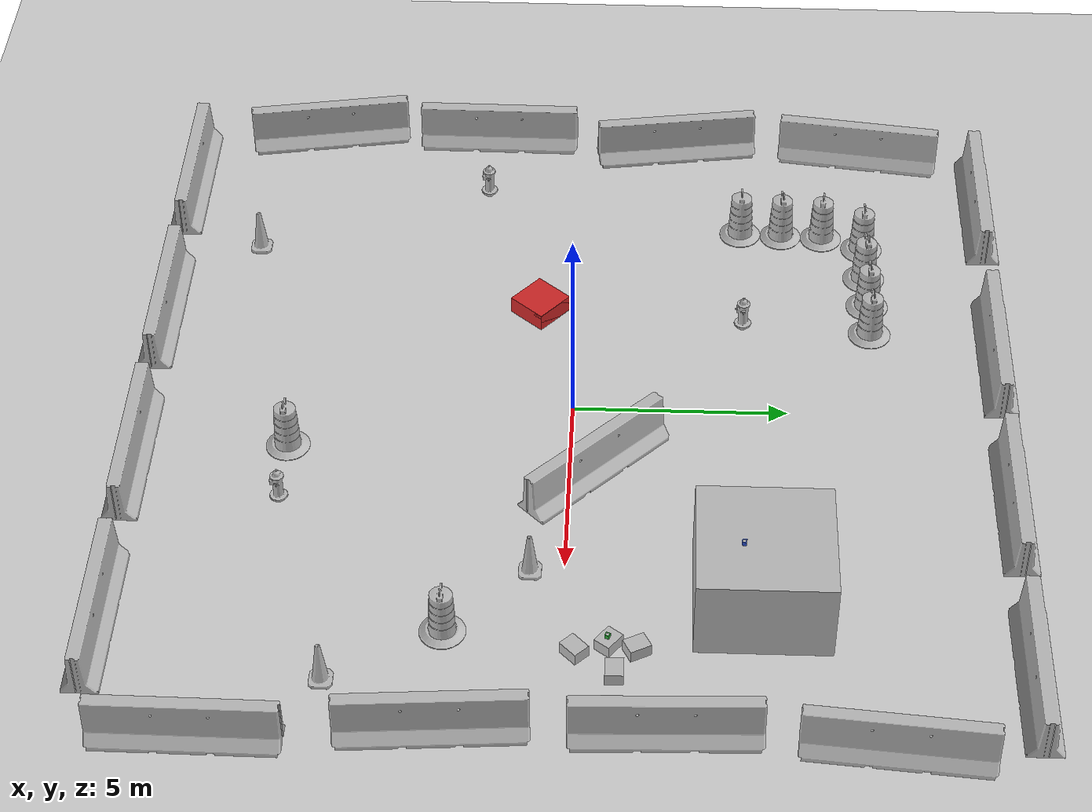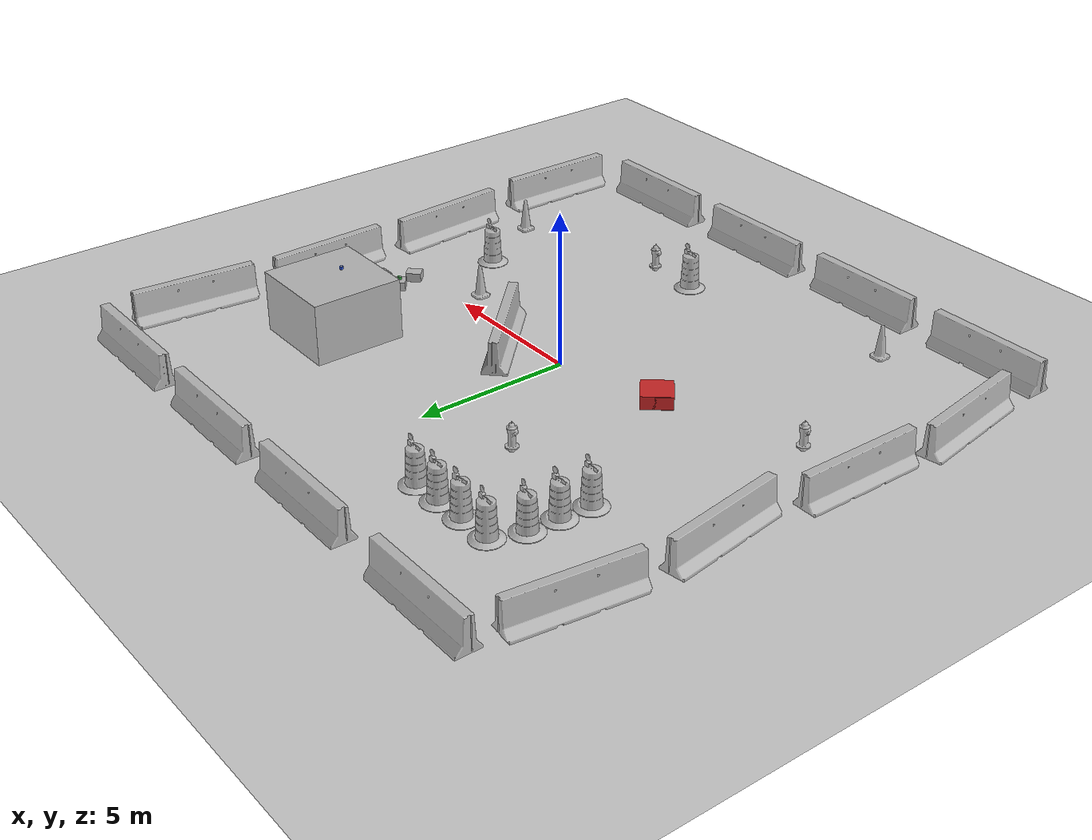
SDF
<sdf version="1.6">
 <world name="default">
  <plugin name="ros_link_attacher_plugin" filename="libgazebo_ros_link_attacher.so"/>
  <light name="sun" type="directional">
   <pose>0 0 10 0 -0 0</pose>
   <diffuse>0.8 0.8 0.8 1</diffuse>
   <specular>0.2 0.2 0.2 1</specular>
   <attenuation>
    <range>1000</range>
    <constant>0.9</constant>
    <linear>0.01</linear>
    <quadratic>0.001</quadratic>
   </attenuation>
   <direction>-0.5 0.1 -0.9</direction>
  </light>
  <model name="ground_plane">
   <static>1</static>
   <link name="link">
    <collision name="collision">
     <geometry><plane><normal>0 0 1</normal><size>100 100</size></plane></geometry>
     <surface><friction><ode><mu>100</mu><mu2>50</mu2></ode></friction></surface>
    </collision>
    <visual name="visual">
     <cast_shadows>0</cast_shadows>
     <geometry><plane><normal>0 0 1</normal><size>100 100</size></plane></geometry>
     <material>
      <script><uri>file://media/materials/scripts/gazebo.material</uri><name>Gazebo/Grey</name></script>
     </material>
    </visual>
    <velocity_decay><linear>0</linear><angular>0</angular></velocity_decay>
   </link>
  </model>
  <physics name="default_physics" default="0" type="ode">
   <max_step_size>0.001</max_step_size>
   <real_time_factor>1</real_time_factor>
   <real_time_update_rate>1000</real_time_update_rate>
  </physics>
  <scene><ambient>0.4 0.4 0.4 1</ambient><background>0.7 0.7 0.7 1</background><shadows>1</shadows></scene>
  <model name="jersey_barrier">
   <static>1</static>
   <link name="link">
    <visual name="visual">
     <geometry><mesh><uri>model://jersey_barrier/meshes/jersey_barrier.dae</uri></mesh></geometry>
    </visual>
    <collision name="upright">
     <pose>0 0 0.5715 0 -0 0</pose>
     <geometry><box><size>4.06542 0.3063 1.143</size></box></geometry>
    </collision>
    <collision name="base">
     <pose>0 0 0.032258 0 -0 0</pose>
     <geometry><box><size>4.06542 0.8107 0.064516</size></box></geometry>
    </collision>
    <collision name="base2">
     <pose>0 0 0.1 0 -0 0</pose>
     <geometry><box><size>4.06542 0.65 0.1</size></box></geometry>
    </collision>
    <collision name="base3">
     <pose>0 0 0.2 0 -0 0</pose>
     <geometry><box><size>4.06542 0.5 0.1</size></box></geometry>
    </collision>
    <collision name="left-angle">
     <pose>0 -0.224 0.2401 0.9 -0 0</pose>
     <geometry><box><size>4.06542 0.5 0.064516</size></box></geometry>
    </collision>
    <collision name="right-angle">
     <pose>0 0.224 0.2401 -0.9 0 0</pose>
     <geometry><box><size>4.06542 0.5 0.064516</size></box></geometry>
    </collision>
    <velocity_decay><linear>0</linear><angular>0</angular></velocity_decay>
   </link>
   <pose>-8 -10 0 0 -0 0</pose>
  </model>
  <model name="jersey_barrier_0">
   <static>1</static>
   <link name="link">
    <visual name="visual">
     <geometry><mesh><uri>model://jersey_barrier/meshes/jersey_barrier.dae</uri></mesh></geometry>
    </visual>
    <collision name="upright">
     <pose>0 0 0.5715 0 -0 0</pose>
     <geometry><box><size>4.06542 0.3063 1.143</size></box></geometry>
    </collision>
    <collision name="base">
     <pose>0 0 0.032258 0 -0 0</pose>
     <geometry><box><size>4.06542 0.8107 0.064516</size></box></geometry>
    </collision>
    <collision name="base2">
     <pose>0 0 0.1 0 -0 0</pose>
     <geometry><box><size>4.06542 0.65 0.1</size></box></geometry>
    </collision>
    <collision name="base3">
     <pose>0 0 0.2 0 -0 0</pose>
     <geometry><box><size>4.06542 0.5 0.1</size></box></geometry>
    </collision>
    <collision name="left-angle">
     <pose>0 -0.224 0.2401 0.9 -0 0</pose>
     <geometry><box><size>4.06542 0.5 0.064516</size></box></geometry>
    </collision>
    <collision name="right-angle">
     <pose>0 0.224 0.2401 -0.9 0 0</pose>
     <geometry><box><size>4.06542 0.5 0.064516</size></box></geometry>
    </collision>
    <velocity_decay><linear>0</linear><angular>0</angular></velocity_decay>
   </link>
   <pose>-3 -10 0 0 -0 0</pose>
  </model>
  <model name="jersey_barrier_1">
   <static>1</static>
   <link name="link">
    <visual name="visual">
     <geometry><mesh><uri>model://jersey_barrier/meshes/jersey_barrier.dae</uri></mesh></geometry>
    </visual>
    <collision name="upright">
     <pose>0 0 0.5715 0 -0 0</pose>
     <geometry><box><size>4.06542 0.3063 1.143</size></box></geometry>
    </collision>
    <collision name="base">
     <pose>0 0 0.032258 0 -0 0</pose>
     <geometry><box><size>4.06542 0.8107 0.064516</size></box></geometry>
    </collision>
    <collision name="base2">
     <pose>0 0 0.1 0 -0 0</pose>
     <geometry><box><size>4.06542 0.65 0.1</size></box></geometry>
    </collision>
    <collision name="base3">
     <pose>0 0 0.2 0 -0 0</pose>
     <geometry><box><size>4.06542 0.5 0.1</size></box></geometry>
    </collision>
    <collision name="left-angle">
     <pose>0 -0.224 0.2401 0.9 -0 0</pose>
     <geometry><box><size>4.06542 0.5 0.064516</size></box></geometry>
    </collision>
    <collision name="right-angle">
     <pose>0 0.224 0.2401 -0.9 0 0</pose>
     <geometry><box><size>4.06542 0.5 0.064516</size></box></geometry>
    </collision>
    <velocity_decay><linear>0</linear><angular>0</angular></velocity_decay>
   </link>
   <pose>2 -10 0 0 -0 0</pose>
  </model>
  <model name="jersey_barrier_2">
   <static>1</static>
   <link name="link">
    <visual name="visual">
     <geometry><mesh><uri>model://jersey_barrier/meshes/jersey_barrier.dae</uri></mesh></geometry>
    </visual>
    <collision name="upright">
     <pose>0 0 0.5715 0 -0 0</pose>
     <geometry><box><size>4.06542 0.3063 1.143</size></box></geometry>
    </collision>
    <collision name="base">
     <pose>0 0 0.032258 0 -0 0</pose>
     <geometry><box><size>4.06542 0.8107 0.064516</size></box></geometry>
    </collision>
    <collision name="base2">
     <pose>0 0 0.1 0 -0 0</pose>
     <geometry><box><size>4.06542 0.65 0.1</size></box></geometry>
    </collision>
    <collision name="base3">
     <pose>0 0 0.2 0 -0 0</pose>
     <geometry><box><size>4.06542 0.5 0.1</size></box></geometry>
    </collision>
    <collision name="left-angle">
     <pose>0 -0.224 0.2401 0.9 -0 0</pose>
     <geometry><box><size>4.06542 0.5 0.064516</size></box></geometry>
    </collision>
    <collision name="right-angle">
     <pose>0 0.224 0.2401 -0.9 0 0</pose>
     <geometry><box><size>4.06542 0.5 0.064516</size></box></geometry>
    </collision>
    <velocity_decay><linear>0</linear><angular>0</angular></velocity_decay>
   </link>
   <pose>7 -10 0 0 -0 0</pose>
  </model>
  <model name="jersey_barrier_3">
   <static>1</static>
   <link name="link">
    <visual name="visual">
     <geometry><mesh><uri>model://jersey_barrier/meshes/jersey_barrier.dae</uri></mesh></geometry>
    </visual>
    <collision name="upright">
     <pose>0 0 0.5715 0 -0 0</pose>
     <geometry><box><size>4.06542 0.3063 1.143</size></box></geometry>
    </collision>
    <collision name="base">
     <pose>0 0 0.032258 0 -0 0</pose>
     <geometry><box><size>4.06542 0.8107 0.064516</size></box></geometry>
    </collision>
    <collision name="base2">
     <pose>0 0 0.1 0 -0 0</pose>
     <geometry><box><size>4.06542 0.65 0.1</size></box></geometry>
    </collision>
    <collision name="base3">
     <pose>0 0 0.2 0 -0 0</pose>
     <geometry><box><size>4.06542 0.5 0.1</size></box></geometry>
    </collision>
    <collision name="left-angle">
     <pose>0 -0.224 0.2401 0.9 -0 0</pose>
     <geometry><box><size>4.06542 0.5 0.064516</size></box></geometry>
    </collision>
    <collision name="right-angle">
     <pose>0 0.224 0.2401 -0.9 0 0</pose>
     <geometry><box><size>4.06542 0.5 0.064516</size></box></geometry>
    </collision>
    <velocity_decay><linear>0</linear><angular>0</angular></velocity_decay>
   </link>
   <pose>-7.50675 10 0 0 -0 0</pose>
  </model>
  <model name="jersey_barrier_4">
   <static>1</static>
   <link name="link">
    <visual name="visual">
     <geometry><mesh><uri>model://jersey_barrier/meshes/jersey_barrier.dae</uri></mesh></geometry>
    </visual>
    <collision name="upright">
     <pose>0 0 0.5715 0 -0 0</pose>
     <geometry><box><size>4.06542 0.3063 1.143</size></box></geometry>
    </collision>
    <collision name="base">
     <pose>0 0 0.032258 0 -0 0</pose>
     <geometry><box><size>4.06542 0.8107 0.064516</size></box></geometry>
    </collision>
    <collision name="base2">
     <pose>0 0 0.1 0 -0 0</pose>
     <geometry><box><size>4.06542 0.65 0.1</size></box></geometry>
    </collision>
    <collision name="base3">
     <pose>0 0 0.2 0 -0 0</pose>
     <geometry><box><size>4.06542 0.5 0.1</size></box></geometry>
    </collision>
    <collision name="left-angle">
     <pose>0 -0.224 0.2401 0.9 -0 0</pose>
     <geometry><box><size>4.06542 0.5 0.064516</size></box></geometry>
    </collision>
    <collision name="right-angle">
     <pose>0 0.224 0.2401 -0.9 0 0</pose>
     <geometry><box><size>4.06542 0.5 0.064516</size></box></geometry>
    </collision>
    <velocity_decay><linear>0</linear><angular>0</angular></velocity_decay>
   </link>
   <pose>-2 10 0 0 -0 0</pose>
  </model>
  <model name="jersey_barrier_5">
   <static>1</static>
   <link name="link">
    <visual name="visual">
     <geometry><mesh><uri>model://jersey_barrier/meshes/jersey_barrier.dae</uri></mesh></geometry>
    </visual>
    <collision name="upright">
     <pose>0 0 0.5715 0 -0 0</pose>
     <geometry><box><size>4.06542 0.3063 1.143</size></box></geometry>
    </collision>
    <collision name="base">
     <pose>0 0 0.032258 0 -0 0</pose>
     <geometry><box><size>4.06542 0.8107 0.064516</size></box></geometry>
    </collision>
    <collision name="base2">
     <pose>0 0 0.1 0 -0 0</pose>
     <geometry><box><size>4.06542 0.65 0.1</size></box></geometry>
    </collision>
    <collision name="base3">
     <pose>0 0 0.2 0 -0 0</pose>
     <geometry><box><size>4.06542 0.5 0.1</size></box></geometry>
    </collision>
    <collision name="left-angle">
     <pose>0 -0.224 0.2401 0.9 -0 0</pose>
     <geometry><box><size>4.06542 0.5 0.064516</size></box></geometry>
    </collision>
    <collision name="right-angle">
     <pose>0 0.224 0.2401 -0.9 0 0</pose>
     <geometry><box><size>4.06542 0.5 0.064516</size></box></geometry>
    </collision>
    <velocity_decay><linear>0</linear><angular>0</angular></velocity_decay>
   </link>
   <pose>3 10 0 0 -0 0</pose>
  </model>
  <model name="jersey_barrier_6">
   <static>1</static>
   <link name="link">
    <visual name="visual">
     <geometry><mesh><uri>model://jersey_barrier/meshes/jersey_barrier.dae</uri></mesh></geometry>
    </visual>
    <collision name="upright">
     <pose>0 0 0.5715 0 -0 0</pose>
     <geometry><box><size>4.06542 0.3063 1.143</size></box></geometry>
    </collision>
    <collision name="base">
     <pose>0 0 0.032258 0 -0 0</pose>
     <geometry><box><size>4.06542 0.8107 0.064516</size></box></geometry>
    </collision>
    <collision name="base2">
     <pose>0 0 0.1 0 -0 0</pose>
     <geometry><box><size>4.06542 0.65 0.1</size></box></geometry>
    </collision>
    <collision name="base3">
     <pose>0 0 0.2 0 -0 0</pose>
     <geometry><box><size>4.06542 0.5 0.1</size></box></geometry>
    </collision>
    <collision name="left-angle">
     <pose>0 -0.224 0.2401 0.9 -0 0</pose>
     <geometry><box><size>4.06542 0.5 0.064516</size></box></geometry>
    </collision>
    <collision name="right-angle">
     <pose>0 0.224 0.2401 -0.9 0 0</pose>
     <geometry><box><size>4.06542 0.5 0.064516</size></box></geometry>
    </collision>
    <velocity_decay><linear>0</linear><angular>0</angular></velocity_decay>
   </link>
   <pose>8 10 0 0 -0 0</pose>
  </model>
  <model name="jersey_barrier_7">
   <static>1</static>
   <link name="link">
    <visual name="visual">
     <geometry><mesh><uri>model://jersey_barrier/meshes/jersey_barrier.dae</uri></mesh></geometry>
    </visual>
    <collision name="upright">
     <pose>0 0 0.5715 0 -0 0</pose>
     <geometry><box><size>4.06542 0.3063 1.143</size></box></geometry>
    </collision>
    <collision name="base">
     <pose>0 0 0.032258 0 -0 0</pose>
     <geometry><box><size>4.06542 0.8107 0.064516</size></box></geometry>
    </collision>
    <collision name="base2">
     <pose>0 0 0.1 0 -0 0</pose>
     <geometry><box><size>4.06542 0.65 0.1</size></box></geometry>
    </collision>
    <collision name="base3">
     <pose>0 0 0.2 0 -0 0</pose>
     <geometry><box><size>4.06542 0.5 0.1</size></box></geometry>
    </collision>
    <collision name="left-angle">
     <pose>0 -0.224 0.2401 0.9 -0 0</pose>
     <geometry><box><size>4.06542 0.5 0.064516</size></box></geometry>
    </collision>
    <collision name="right-angle">
     <pose>0 0.224 0.2401 -0.9 0 0</pose>
     <geometry><box><size>4.06542 0.5 0.064516</size></box></geometry>
    </collision>
    <velocity_decay><linear>0</linear><angular>0</angular></velocity_decay>
   </link>
   <pose>9.74902 -2.57759 0 0 -0 1.64</pose>
  </model>
  <model name="jersey_barrier_8">
   <static>1</static>
   <link name="link">
    <visual name="visual">
     <geometry><mesh><uri>model://jersey_barrier/meshes/jersey_barrier.dae</uri></mesh></geometry>
    </visual>
    <collision name="upright">
     <pose>0 0 0.5715 0 -0 0</pose>
     <geometry><box><size>4.06542 0.3063 1.143</size></box></geometry>
    </collision>
    <collision name="base">
     <pose>0 0 0.032258 0 -0 0</pose>
     <geometry><box><size>4.06542 0.8107 0.064516</size></box></geometry>
    </collision>
    <collision name="base2">
     <pose>0 0 0.1 0 -0 0</pose>
     <geometry><box><size>4.06542 0.65 0.1</size></box></geometry>
    </collision>
    <collision name="base3">
     <pose>0 0 0.2 0 -0 0</pose>
     <geometry><box><size>4.06542 0.5 0.1</size></box></geometry>
    </collision>
    <collision name="left-angle">
     <pose>0 -0.224 0.2401 0.9 -0 0</pose>
     <geometry><box><size>4.06542 0.5 0.064516</size></box></geometry>
    </collision>
    <collision name="right-angle">
     <pose>0 0.224 0.2401 -0.9 0 0</pose>
     <geometry><box><size>4.06542 0.5 0.064516</size></box></geometry>
    </collision>
    <velocity_decay><linear>0</linear><angular>0</angular></velocity_decay>
   </link>
   <pose>9.70141 2.24369 0 0 -0 1.6</pose>
  </model>
  <model name="jersey_barrier_9">
   <static>1</static>
   <link name="link">
    <visual name="visual">
     <geometry><mesh><uri>model://jersey_barrier/meshes/jersey_barrier.dae</uri></mesh></geometry>
    </visual>
    <collision name="upright">
     <pose>0 0 0.5715 0 -0 0</pose>
     <geometry><box><size>4.06542 0.3063 1.143</size></box></geometry>
    </collision>
    <collision name="base">
     <pose>0 0 0.032258 0 -0 0</pose>
     <geometry><box><size>4.06542 0.8107 0.064516</size></box></geometry>
    </collision>
    <collision name="base2">
     <pose>0 0 0.1 0 -0 0</pose>
     <geometry><box><size>4.06542 0.65 0.1</size></box></geometry>
    </collision>
    <collision name="base3">
     <pose>0 0 0.2 0 -0 0</pose>
     <geometry><box><size>4.06542 0.5 0.1</size></box></geometry>
    </collision>
    <collision name="left-angle">
     <pose>0 -0.224 0.2401 0.9 -0 0</pose>
     <geometry><box><size>4.06542 0.5 0.064516</size></box></geometry>
    </collision>
    <collision name="right-angle">
     <pose>0 0.224 0.2401 -0.9 0 0</pose>
     <geometry><box><size>4.06542 0.5 0.064516</size></box></geometry>
    </collision>
    <velocity_decay><linear>0</linear><angular>0</angular></velocity_decay>
   </link>
   <pose>-10.0607 -6.69856 0 0 0 -1.4</pose>
  </model>
  <model name="jersey_barrier_10">
   <static>1</static>
   <link name="link">
    <visual name="visual">
     <geometry><mesh><uri>model://jersey_barrier/meshes/jersey_barrier.dae</uri></mesh></geometry>
    </visual>
    <collision name="upright">
     <pose>0 0 0.5715 0 -0 0</pose>
     <geometry><box><size>4.06542 0.3063 1.143</size></box></geometry>
    </collision>
    <collision name="base">
     <pose>0 0 0.032258 0 -0 0</pose>
     <geometry><box><size>4.06542 0.8107 0.064516</size></box></geometry>
    </collision>
    <collision name="base2">
     <pose>0 0 0.1 0 -0 0</pose>
     <geometry><box><size>4.06542 0.65 0.1</size></box></geometry>
    </collision>
    <collision name="base3">
     <pose>0 0 0.2 0 -0 0</pose>
     <geometry><box><size>4.06542 0.5 0.1</size></box></geometry>
    </collision>
    <collision name="left-angle">
     <pose>0 -0.224 0.2401 0.9 -0 0</pose>
     <geometry><box><size>4.06542 0.5 0.064516</size></box></geometry>
    </collision>
    <collision name="right-angle">
     <pose>0 0.224 0.2401 -0.9 0 0</pose>
     <geometry><box><size>4.06542 0.5 0.064516</size></box></geometry>
    </collision>
    <velocity_decay><linear>0</linear><angular>0</angular></velocity_decay>
   </link>
   <pose>-10.0774 -2.27159 0 0 -0 1.56</pose>
  </model>
  <model name="jersey_barrier_11">
   <static>1</static>
   <link name="link">
    <visual name="visual">
     <geometry><mesh><uri>model://jersey_barrier/meshes/jersey_barrier.dae</uri></mesh></geometry>
    </visual>
    <collision name="upright">
     <pose>0 0 0.5715 0 -0 0</pose>
     <geometry><box><size>4.06542 0.3063 1.143</size></box></geometry>
    </collision>
    <collision name="base">
     <pose>0 0 0.032258 0 -0 0</pose>
     <geometry><box><size>4.06542 0.8107 0.064516</size></box></geometry>
    </collision>
    <collision name="base2">
     <pose>0 0 0.1 0 -0 0</pose>
     <geometry><box><size>4.06542 0.65 0.1</size></box></geometry>
    </collision>
    <collision name="base3">
     <pose>0 0 0.2 0 -0 0</pose>
     <geometry><box><size>4.06542 0.5 0.1</size></box></geometry>
    </collision>
    <collision name="left-angle">
     <pose>0 -0.224 0.2401 0.9 -0 0</pose>
     <geometry><box><size>4.06542 0.5 0.064516</size></box></geometry>
    </collision>
    <collision name="right-angle">
     <pose>0 0.224 0.2401 -0.9 0 0</pose>
     <geometry><box><size>4.06542 0.5 0.064516</size></box></geometry>
    </collision>
    <velocity_decay><linear>0</linear><angular>0</angular></velocity_decay>
   </link>
   <pose>-9.77013 2.34791 0 0 -0 1.72</pose>
  </model>
  <model name="jersey_barrier_12">
   <static>1</static>
   <link name="link">
    <visual name="visual">
     <geometry><mesh><uri>model://jersey_barrier/meshes/jersey_barrier.dae</uri></mesh></geometry>
    </visual>
    <collision name="upright">
     <pose>0 0 0.5715 0 -0 0</pose>
     <geometry><box><size>4.06542 0.3063 1.143</size></box></geometry>
    </collision>
    <collision name="base">
     <pose>0 0 0.032258 0 -0 0</pose>
     <geometry><box><size>4.06542 0.8107 0.064516</size></box></geometry>
    </collision>
    <collision name="base2">
     <pose>0 0 0.1 0 -0 0</pose>
     <geometry><box><size>4.06542 0.65 0.1</size></box></geometry>
    </collision>
    <collision name="base3">
     <pose>0 0 0.2 0 -0 0</pose>
     <geometry><box><size>4.06542 0.5 0.1</size></box></geometry>
    </collision>
    <collision name="left-angle">
     <pose>0 -0.224 0.2401 0.9 -0 0</pose>
     <geometry><box><size>4.06542 0.5 0.064516</size></box></geometry>
    </collision>
    <collision name="right-angle">
     <pose>0 0.224 0.2401 -0.9 0 0</pose>
     <geometry><box><size>4.06542 0.5 0.064516</size></box></geometry>
    </collision>
    <velocity_decay><linear>0</linear><angular>0</angular></velocity_decay>
   </link>
   <pose>10.0879 -7.62159 0 0 -0 1.56</pose>
  </model>
  <model name="jersey_barrier_13">
   <static>1</static>
   <link name="link">
    <visual name="visual">
     <geometry><mesh><uri>model://jersey_barrier/meshes/jersey_barrier.dae</uri></mesh></geometry>
    </visual>
    <collision name="upright">
     <pose>0 0 0.5715 0 -0 0</pose>
     <geometry><box><size>4.06542 0.3063 1.143</size></box></geometry>
    </collision>
    <collision name="base">
     <pose>0 0 0.032258 0 -0 0</pose>
     <geometry><box><size>4.06542 0.8107 0.064516</size></box></geometry>
    </collision>
    <collision name="base2">
     <pose>0 0 0.1 0 -0 0</pose>
     <geometry><box><size>4.06542 0.65 0.1</size></box></geometry>
    </collision>
    <collision name="base3">
     <pose>0 0 0.2 0 -0 0</pose>
     <geometry><box><size>4.06542 0.5 0.1</size></box></geometry>
    </collision>
    <collision name="left-angle">
     <pose>0 -0.224 0.2401 0.9 -0 0</pose>
     <geometry><box><size>4.06542 0.5 0.064516</size></box></geometry>
    </collision>
    <collision name="right-angle">
     <pose>0 0.224 0.2401 -0.9 0 0</pose>
     <geometry><box><size>4.06542 0.5 0.064516</size></box></geometry>
    </collision>
    <velocity_decay><linear>0</linear><angular>0</angular></velocity_decay>
   </link>
   <pose>10 7 0 0 -0 1.48</pose>
  </model>
  <model name="jersey_barrier_14">
   <static>1</static>
   <link name="link">
    <visual name="visual">
     <geometry><mesh><uri>model://jersey_barrier/meshes/jersey_barrier.dae</uri></mesh></geometry>
    </visual>
    <collision name="upright">
     <pose>0 0 0.5715 0 -0 0</pose>
     <geometry><box><size>4.06542 0.3063 1.143</size></box></geometry>
    </collision>
    <collision name="base">
     <pose>0 0 0.032258 0 -0 0</pose>
     <geometry><box><size>4.06542 0.8107 0.064516</size></box></geometry>
    </collision>
    <collision name="base2">
     <pose>0 0 0.1 0 -0 0</pose>
     <geometry><box><size>4.06542 0.65 0.1</size></box></geometry>
    </collision>
    <collision name="base3">
     <pose>0 0 0.2 0 -0 0</pose>
     <geometry><box><size>4.06542 0.5 0.1</size></box></geometry>
    </collision>
    <collision name="left-angle">
     <pose>0 -0.224 0.2401 0.9 -0 0</pose>
     <geometry><box><size>4.06542 0.5 0.064516</size></box></geometry>
    </collision>
    <collision name="right-angle">
     <pose>0 0.224 0.2401 -0.9 0 0</pose>
     <geometry><box><size>4.06542 0.5 0.064516</size></box></geometry>
    </collision>
    <velocity_decay><linear>0</linear><angular>0</angular></velocity_decay>
   </link>
   <pose>-9.64482 7.05946 0 0 -0 1.44</pose>
  </model>
  <model name="fire_hydrant">
   <static>1</static>
   <link name="link">
    <collision name="collision">
     <geometry><mesh><uri>model://fire_hydrant/meshes/fire_hydrant.dae</uri></mesh></geometry>
    </collision>
    <visual name="visual">
     <geometry><mesh><uri>model://fire_hydrant/meshes/fire_hydrant.dae</uri></mesh></geometry>
    </visual>
    <velocity_decay><linear>0</linear><angular>0</angular></velocity_decay>
   </link>
   <pose>3.18024 -6.51118 0 0 -0 0</pose>
  </model>
  <model name="fire_hydrant_0">
   <static>1</static>
   <link name="link">
    <collision name="collision">
     <geometry><mesh><uri>model://fire_hydrant/meshes/fire_hydrant.dae</uri></mesh></geometry>
    </collision>
    <visual name="visual">
     <geometry><mesh><uri>model://fire_hydrant/meshes/fire_hydrant.dae</uri></mesh></geometry>
    </visual>
    <velocity_decay><linear>0</linear><angular>0</angular></velocity_decay>
   </link>
   <pose>-3 4 0 0 -0 0</pose>
  </model>
  <model name="fire_hydrant_1">
   <static>1</static>
   <link name="link">
    <collision name="collision">
     <geometry><mesh><uri>model://fire_hydrant/meshes/fire_hydrant.dae</uri></mesh></geometry>
    </collision>
    <visual name="visual">
     <geometry><mesh><uri>model://fire_hydrant/meshes/fire_hydrant.dae</uri></mesh></geometry>
    </visual>
    <velocity_decay><linear>0</linear><angular>0</angular></velocity_decay>
   </link>
   <pose>-7.90686 -2.41363 0 0 -0 0</pose>
  </model>
  <model name="jersey_barrier_15">
   <static>1</static>
   <link name="link">
    <visual name="visual">
     <geometry><mesh><uri>model://jersey_barrier/meshes/jersey_barrier.dae</uri></mesh></geometry>
    </visual>
    <collision name="upright">
     <pose>0 0 0.5715 0 -0 0</pose>
     <geometry><box><size>4.06542 0.3063 1.143</size></box></geometry>
    </collision>
    <collision name="base">
     <pose>0 0 0.032258 0 -0 0</pose>
     <geometry><box><size>4.06542 0.8107 0.064516</size></box></geometry>
    </collision>
    <collision name="base2">
     <pose>0 0 0.1 0 -0 0</pose>
     <geometry><box><size>4.06542 0.65 0.1</size></box></geometry>
    </collision>
    <collision name="base3">
     <pose>0 0 0.2 0 -0 0</pose>
     <geometry><box><size>4.06542 0.5 0.1</size></box></geometry>
    </collision>
    <collision name="left-angle">
     <pose>0 -0.224 0.2401 0.9 -0 0</pose>
     <geometry><box><size>4.06542 0.5 0.064516</size></box></geometry>
    </collision>
    <collision name="right-angle">
     <pose>0 0.224 0.2401 -0.9 0 0</pose>
     <geometry><box><size>4.06542 0.5 0.064516</size></box></geometry>
    </collision>
    <velocity_decay><linear>0</linear><angular>0</angular></velocity_decay>
   </link>
   <pose>2.09011 0.563843 0 0 -0 2.36</pose>
  </model>
  <model name="Construction Cone">
   <link name="link">
    <collision name="collision">
     <geometry>
      <mesh><scale>10 10 10</scale><uri>model://construction_cone/meshes/construction_cone.dae</uri></mesh>
     </geometry>
    </collision>
    <visual name="visual">
     <geometry>
      <mesh><scale>10 10 10</scale><uri>model://construction_cone/meshes/construction_cone.dae</uri></mesh>
     </geometry>
    </visual>
    <velocity_decay><linear>0</linear><angular>0</angular></velocity_decay>
    <inertial>
     <inertia><ixx>1</ixx><ixy>0</ixy><ixz>0</ixz><iyy>1</iyy><iyz>0</iyz><izz>1</izz></inertia>
     <mass>1</mass>
    </inertial>
   </link>
   <pose>-5.59121 -8 -0 0 -0 6e-06</pose>
   <static>0</static>
  </model>
  <model name="Construction Barrel">
   <link name="link">
    <inertial>
     <pose>0 0 0.4 0 -0 0</pose>
     <mass>500</mass>
     <inertia><ixx>51.2096</ixx><iyy>51.2096</iyy><izz>25</izz><ixy>0</ixy><ixz>0</ixz><iyz>0</iyz></inertia>
    </inertial>
    <collision name="collision">
     <geometry><mesh><uri>model://construction_barrel/meshes/construction_barrel.dae</uri></mesh></geometry>
    </collision>
    <visual name="visual">
     <geometry><mesh><uri>model://construction_barrel/meshes/construction_barrel.dae</uri></mesh></geometry>
    </visual>
    <velocity_decay><linear>0</linear><angular>0</angular></velocity_decay>
   </link>
   <pose>7.00012 -2.54625 0 0 0 -0.000408</pose>
   <static>0</static>
  </model>
  <model name="Construction Cone_0">
   <link name="link">
    <collision name="collision">
     <geometry>
      <mesh><scale>10 10 10</scale><uri>model://construction_cone/meshes/construction_cone.dae</uri></mesh>
     </geometry>
    </collision>
    <visual name="visual">
     <geometry>
      <mesh><scale>10 10 10</scale><uri>model://construction_cone/meshes/construction_cone.dae</uri></mesh>
     </geometry>
    </visual>
    <velocity_decay><linear>0</linear><angular>0</angular></velocity_decay>
    <inertial>
     <inertia><ixx>1</ixx><ixy>0</ixy><ixz>0</ixz><iyy>1</iyy><iyz>0</iyz><izz>1</izz></inertia>
     <mass>1</mass>
    </inertial>
   </link>
   <pose>5.19306 -0.755114 -0 0 0 -0.007006</pose>
   <static>0</static>
  </model>
  <model name="Construction Barrel_0">
   <link name="link">
    <inertial>
     <pose>0 0 0.4 0 -0 0</pose>
     <mass>500</mass>
     <inertia><ixx>51.2096</ixx><iyy>51.2096</iyy><izz>25</izz><ixy>0</ixy><ixz>0</ixz><iyz>0</iyz></inertia>
    </inertial>
    <collision name="collision">
     <geometry><mesh><uri>model://construction_barrel/meshes/construction_barrel.dae</uri></mesh></geometry>
    </collision>
    <visual name="visual">
     <geometry><mesh><uri>model://construction_barrel/meshes/construction_barrel.dae</uri></mesh></geometry>
    </visual>
    <velocity_decay><linear>0</linear><angular>0</angular></velocity_decay>
   </link>
   <pose>1.4517 -6.51117 0 0 0 -0.000432</pose>
   <static>0</static>
  </model>
  <model name="Construction Barrel_1">
   <link name="link">
    <inertial>
     <pose>0 0 0.4 0 -0 0</pose>
     <mass>500</mass>
     <inertia><ixx>51.2096</ixx><iyy>51.2096</iyy><izz>25</izz><ixy>0</ixy><ixz>0</ixz><iyz>0</iyz></inertia>
    </inertial>
    <collision name="collision">
     <geometry><mesh><uri>model://construction_barrel/meshes/construction_barrel.dae</uri></mesh></geometry>
    </collision>
    <visual name="visual">
     <geometry><mesh><uri>model://construction_barrel/meshes/construction_barrel.dae</uri></mesh></geometry>
    </visual>
    <velocity_decay><linear>0</linear><angular>0</angular></velocity_decay>
   </link>
   <pose>-6.50436 3.98303 -3e-06 -9e-06 -4e-06 -0.010093</pose>
   <static>0</static>
  </model>
  <model name="Construction Barrel_2">
   <link name="link">
    <inertial>
     <pose>0 0 0.4 0 -0 0</pose>
     <mass>500</mass>
     <inertia><ixx>51.2096</ixx><iyy>51.2096</iyy><izz>25</izz><ixy>0</ixy><ixz>0</ixz><iyz>0</iyz></inertia>
    </inertial>
    <collision name="collision">
     <geometry><mesh><uri>model://construction_barrel/meshes/construction_barrel.dae</uri></mesh></geometry>
    </collision>
    <visual name="visual">
     <geometry><mesh><uri>model://construction_barrel/meshes/construction_barrel.dae</uri></mesh></geometry>
    </visual>
    <velocity_decay><linear>0</linear><angular>0</angular></velocity_decay>
   </link>
   <pose>-6.45045 4.9967 -0 1e-06 -1e-06 0.064729</pose>
   <static>0</static>
  </model>
  <model name="Construction Barrel_3">
   <link name="link">
    <inertial>
     <pose>0 0 0.4 0 -0 0</pose>
     <mass>500</mass>
     <inertia><ixx>51.2096</ixx><iyy>51.2096</iyy><izz>25</izz><ixy>0</ixy><ixz>0</ixz><iyz>0</iyz></inertia>
    </inertial>
    <collision name="collision">
     <geometry><mesh><uri>model://construction_barrel/meshes/construction_barrel.dae</uri></mesh></geometry>
    </collision>
    <visual name="visual">
     <geometry><mesh><uri>model://construction_barrel/meshes/construction_barrel.dae</uri></mesh></geometry>
    </visual>
    <velocity_decay><linear>0</linear><angular>0</angular></velocity_decay>
   </link>
   <pose>-6.4019 6.01071 -3e-06 -8e-06 -2e-06 -0.120336</pose>
   <static>0</static>
  </model>
  <model name="Construction Barrel_4">
   <link name="link">
    <inertial>
     <pose>0 0 0.4 0 -0 0</pose>
     <mass>500</mass>
     <inertia><ixx>51.2096</ixx><iyy>51.2096</iyy><izz>25</izz><ixy>0</ixy><ixz>0</ixz><iyz>0</iyz></inertia>
    </inertial>
    <collision name="collision">
     <geometry><mesh><uri>model://construction_barrel/meshes/construction_barrel.dae</uri></mesh></geometry>
    </collision>
    <visual name="visual">
     <geometry><mesh><uri>model://construction_barrel/meshes/construction_barrel.dae</uri></mesh></geometry>
    </visual>
    <velocity_decay><linear>0</linear><angular>0</angular></velocity_decay>
   </link>
   <pose>-6.0066 7.00742 -2e-06 -7e-06 -4e-06 -0.047151</pose>
   <static>0</static>
  </model>
  <model name="Construction Barrel_5">
   <link name="link">
    <inertial>
     <pose>0 0 0.4 0 -0 0</pose>
     <mass>500</mass>
     <inertia><ixx>51.2096</ixx><iyy>51.2096</iyy><izz>25</izz><ixy>0</ixy><ixz>0</ixz><iyz>0</iyz></inertia>
    </inertial>
    <collision name="collision">
     <geometry><mesh><uri>model://construction_barrel/meshes/construction_barrel.dae</uri></mesh></geometry>
    </collision>
    <visual name="visual">
     <geometry><mesh><uri>model://construction_barrel/meshes/construction_barrel.dae</uri></mesh></geometry>
    </visual>
    <velocity_decay><linear>0</linear><angular>0</angular></velocity_decay>
   </link>
   <pose>-4.87523 7.00874 -0 0 -0 0.146144</pose>
   <static>0</static>
  </model>
  <model name="Construction Barrel_6">
   <link name="link">
    <inertial>
     <pose>0 0 0.4 0 -0 0</pose>
     <mass>500</mass>
     <inertia><ixx>51.2096</ixx><iyy>51.2096</iyy><izz>25</izz><ixy>0</ixy><ixz>0</ixz><iyz>0</iyz></inertia>
    </inertial>
    <collision name="collision">
     <geometry><mesh><uri>model://construction_barrel/meshes/construction_barrel.dae</uri></mesh></geometry>
    </collision>
    <visual name="visual">
     <geometry><mesh><uri>model://construction_barrel/meshes/construction_barrel.dae</uri></mesh></geometry>
    </visual>
    <velocity_decay><linear>0</linear><angular>0</angular></velocity_decay>
   </link>
   <pose>-3.84215 7.04139 -2e-06 8e-06 -4e-06 0.026025</pose>
   <static>0</static>
  </model>
  <model name="Construction Barrel_7">
   <link name="link">
    <inertial>
     <pose>0 0 0.4 0 -0 0</pose>
     <mass>500</mass>
     <inertia><ixx>51.2096</ixx><iyy>51.2096</iyy><izz>25</izz><ixy>0</ixy><ixz>0</ixz><iyz>0</iyz></inertia>
    </inertial>
    <collision name="collision">
     <geometry><mesh><uri>model://construction_barrel/meshes/construction_barrel.dae</uri></mesh></geometry>
    </collision>
    <visual name="visual">
     <geometry><mesh><uri>model://construction_barrel/meshes/construction_barrel.dae</uri></mesh></geometry>
    </visual>
    <velocity_decay><linear>0</linear><angular>0</angular></velocity_decay>
   </link>
   <pose>-2.82499 7.05392 -0 0 -0 0.05434</pose>
   <static>0</static>
  </model>
  <model name="Construction Cone_1">
   <link name="link">
    <collision name="collision">
     <geometry>
      <mesh><scale>10 10 10</scale><uri>model://construction_cone/meshes/construction_cone.dae</uri></mesh>
     </geometry>
    </collision>
    <visual name="visual">
     <geometry>
      <mesh><scale>10 10 10</scale><uri>model://construction_cone/meshes/construction_cone.dae</uri></mesh>
     </geometry>
    </visual>
    <velocity_decay><linear>0</linear><angular>0</angular></velocity_decay>
    <inertial>
     <inertia><ixx>1</ixx><ixy>0</ixy><ixz>0</ixz><iyy>1</iyy><iyz>0</iyz><izz>1</izz></inertia>
     <mass>1</mass>
    </inertial>
   </link>
   <pose>8.42887 -5 -0 0 -0 6e-06</pose>
   <static>0</static>
  </model>
  <model name="cube1">
   <pose>7.29709 0.992568 0.348998 0 0 -0.402139</pose>
   <link name="cube1_link">
    <inertial>
     <mass>2</mass>
     <inertia>
      <ixx>0.0166667</ixx>
      <ixy>0</ixy>
      <ixz>0</ixz>
      <iyy>0.0166667</iyy>
      <iyz>0</iyz>
      <izz>0.0166667</izz>
     </inertia>
    </inertial>
    <collision name="collision"><geometry><box><size>0.1 0.1 0.1</size></box></geometry></collision>
    <visual name="visual">
     <geometry><box><size>0.1 0.1 0.1</size></box></geometry>
     <material>
      <script><name>Gazebo/Green</name><uri>file://media/materials/scripts/gazebo.material</uri></script>
     </material>
    </visual>
   </link>
   <link name="tag1">
    <pose>0 0 0.05 0 -0 0</pose>
    <collision name="collision"><geometry><box><size>0.0675 0.0675 0.0001</size></box></geometry></collision>
    <visual name="visual">
     <cast_shadows>0</cast_shadows>
     <geometry><box><size>0.0675 0.0675 0.0001</size></box></geometry>
     <material>
      <script>
       <uri>model://artag/materials/scripts</uri>
       <uri>model://artag/materials/textures</uri>
       <name>material/artag1</name>
      </script>
     </material>
    </visual>
    <inertial>
     <inertia><ixx>1</ixx><ixy>0</ixy><ixz>0</ixz><iyy>1</iyy><iyz>0</iyz><izz>1</izz></inertia>
     <mass>1</mass>
    </inertial>
   </link>
   <joint name="cube1_tag1" type="fixed"><parent>cube1_link</parent><child>tag1</child></joint>
  </model>
  <gravity>0 0 -9.8</gravity>
  <magnetic_field>6e-06 2.3e-05 -4.2e-05</magnetic_field>
  <atmosphere type="adiabatic"/>
  <spherical_coordinates>
   <surface_model>EARTH_WGS84</surface_model>
   <latitude_deg>0</latitude_deg>
   <longitude_deg>0</longitude_deg>
   <elevation>0</elevation>
   <heading_deg>0</heading_deg>
  </spherical_coordinates>
  <model name="box_target_red">
   <link name="link">
    <inertial>
     <mass>1</mass>
     <inertia><ixx>1</ixx><ixy>0</ixy><ixz>0</ixz><iyy>1</iyy><iyz>0</iyz><izz>1</izz></inertia>
    </inertial>
    <visual name="visual">
     <geometry><box><size>3 3 2</size></box></geometry>
     <material><shader type="pixel"><normal_map>__default__</normal_map></shader></material>
    </visual>
    <collision name="collision">
     <geometry><box><size>3 3 2</size></box></geometry>
     <surface>
      <friction>
       <ode><mu>1</mu><mu2>1</mu2><fdir1>0 0 0</fdir1><slip1>0</slip1><slip2>0</slip2></ode>
       <torsional>
        <coefficient>1</coefficient>
        <patch_radius>0</patch_radius>
        <surface_radius>0</surface_radius>
        <use_patch_radius>1</use_patch_radius>
        <ode><slip>0</slip></ode>
       </torsional>
      </friction>
      <bounce><restitution_coefficient>0</restitution_coefficient><threshold>1e+06</threshold></bounce>
      <contact>
       <collide_without_contact>0</collide_without_contact>
       <collide_without_contact_bitmask>1</collide_without_contact_bitmask>
       <collide_bitmask>1</collide_bitmask>
       <ode>
        <soft_cfm>0</soft_cfm>
        <soft_erp>0.2</soft_erp>
        <kp>1e+13</kp>
        <kd>1</kd>
        <max_vel>0.01</max_vel>
        <min_depth>0</min_depth>
       </ode>
       <bullet>
        <split_impulse>1</split_impulse>
        <split_impulse_penetration_threshold>-0.01</split_impulse_penetration_threshold>
        <soft_cfm>0</soft_cfm>
        <soft_erp>0.2</soft_erp>
        <kp>1e+13</kp>
        <kd>1</kd>
       </bullet>
      </contact>
     </surface>
    </collision>
   </link>
   <static>1</static>
   <pose>5.8907 4.30052 1 0 -0 0</pose>
  </model>
  <model name="cardboard_box">
   <pose>7.2892 1.01513 0.148999 0 0 -0.647303</pose>
   <link name="link">
    <inertial>
     <mass>2</mass>
     <inertia>
      <ixx>0.0416667</ixx>
      <ixy>0</ixy>
      <ixz>0</ixz>
      <iyy>0.0566667</iyy>
      <iyz>0</iyz>
      <izz>0.0683333</izz>
     </inertia>
    </inertial>
    <collision name="collision">
     <geometry><box><size>0.5 0.4 0.3</size></box></geometry>
     <surface>
      <friction><ode><mu>1</mu><mu2>1</mu2></ode></friction>
      <contact><ode><kp>1e+07</kp><kd>1</kd><min_depth>0.001</min_depth><max_vel>0.1</max_vel></ode></contact>
     </surface>
    </collision>
    <visual name="visual">
     <pose>0 0 -0.15 0 -0 0</pose>
     <geometry>
      <mesh><uri>model://cardboard_box/meshes/cardboard_box.dae</uri><scale>1.25932 1.00745 0.755591</scale></mesh>
     </geometry>
    </visual>
   </link>
  </model>
  <model name="cardboard_box_0">
   <pose>7.42189 1.62061 0.149 0 0 -1.0963</pose>
   <link name="link">
    <inertial>
     <mass>2</mass>
     <inertia>
      <ixx>0.0416667</ixx>
      <ixy>0</ixy>
      <ixz>0</ixz>
      <iyy>0.0566667</iyy>
      <iyz>0</iyz>
      <izz>0.0683333</izz>
     </inertia>
    </inertial>
    <collision name="collision">
     <geometry><box><size>0.5 0.4 0.3</size></box></geometry>
     <surface>
      <friction><ode><mu>1</mu><mu2>1</mu2></ode></friction>
      <contact><ode><kp>1e+07</kp><kd>1</kd><min_depth>0.001</min_depth><max_vel>0.1</max_vel></ode></contact>
     </surface>
    </collision>
    <visual name="visual">
     <pose>0 0 -0.15 0 -0 0</pose>
     <geometry>
      <mesh><uri>model://cardboard_box/meshes/cardboard_box.dae</uri><scale>1.25932 1.00745 0.755591</scale></mesh>
     </geometry>
    </visual>
   </link>
  </model>
  <model name="cardboard_box_1">
   <pose>8.10183 1.15258 0.149 0 -0 0</pose>
   <link name="link">
    <inertial>
     <mass>2</mass>
     <inertia>
      <ixx>0.0416667</ixx>
      <ixy>0</ixy>
      <ixz>0</ixz>
      <iyy>0.0566667</iyy>
      <iyz>0</iyz>
      <izz>0.0683333</izz>
     </inertia>
    </inertial>
    <collision name="collision">
     <geometry><box><size>0.5 0.4 0.3</size></box></geometry>
     <surface>
      <friction><ode><mu>1</mu><mu2>1</mu2></ode></friction>
      <contact><ode><kp>1e+07</kp><kd>1</kd><min_depth>0.001</min_depth><max_vel>0.1</max_vel></ode></contact>
     </surface>
    </collision>
    <visual name="visual">
     <pose>0 0 -0.15 0 -0 0</pose>
     <geometry>
      <mesh><uri>model://cardboard_box/meshes/cardboard_box.dae</uri><scale>1.25932 1.00745 0.755591</scale></mesh>
     </geometry>
    </visual>
   </link>
  </model>
  <model name="cardboard_box_2">
   <pose>7.51907 0.286876 0.149 0 -0 0.772185</pose>
   <link name="link">
    <inertial>
     <mass>2</mass>
     <inertia>
      <ixx>0.0416667</ixx>
      <ixy>0</ixy>
      <ixz>0</ixz>
      <iyy>0.0566667</iyy>
      <iyz>0</iyz>
      <izz>0.0683333</izz>
     </inertia>
    </inertial>
    <collision name="collision">
     <geometry><box><size>0.5 0.4 0.3</size></box></geometry>
     <surface>
      <friction><ode><mu>1</mu><mu2>1</mu2></ode></friction>
      <contact><ode><kp>1e+07</kp><kd>1</kd><min_depth>0.001</min_depth><max_vel>0.1</max_vel></ode></contact>
     </surface>
    </collision>
    <visual name="visual">
     <pose>0 0 -0.15 0 -0 0</pose>
     <geometry>
      <mesh><uri>model://cardboard_box/meshes/cardboard_box.dae</uri><scale>1.25932 1.00745 0.755591</scale></mesh>
     </geometry>
    </visual>
   </link>
  </model>
  <model name="cube2">
   <pose>6.08673 3.83142 2.05 0 -0 1.50311</pose>
   <link name="cube2_link">
    <inertial>
     <mass>2</mass>
     <inertia>
      <ixx>0.0166667</ixx>
      <ixy>0</ixy>
      <ixz>0</ixz>
      <iyy>0.0166667</iyy>
      <iyz>0</iyz>
      <izz>0.0166667</izz>
     </inertia>
    </inertial>
    <collision name="collision"><geometry><box><size>0.1 0.1 0.1</size></box></geometry></collision>
    <visual name="visual">
     <geometry><box><size>0.1 0.1 0.1</size></box></geometry>
     <material>
      <script><name>Gazebo/Blue</name><uri>file://media/materials/scripts/gazebo.material</uri></script>
     </material>
    </visual>
   </link>
   <link name="tag2">
    <pose>0 0 0.05 0 -0 0</pose>
    <collision name="collision"><geometry><box><size>0.0675 0.0675 0.0001</size></box></geometry></collision>
    <visual name="visual">
     <cast_shadows>0</cast_shadows>
     <geometry><box><size>0.0675 0.0675 0.0001</size></box></geometry>
     <material>
      <script>
       <uri>model://artag/materials/scripts</uri>
       <uri>model://artag/materials/textures</uri>
       <name>material/artag2</name>
      </script>
     </material>
    </visual>
    <inertial>
     <inertia><ixx>1</ixx><ixy>0</ixy><ixz>0</ixz><iyy>1</iyy><iyz>0</iyz><izz>1</izz></inertia>
     <mass>1</mass>
    </inertial>
   </link>
   <joint name="cube2_tag2" type="fixed"><parent>cube2_link</parent><child>tag2</child></joint>
  </model>
  <model name="unit_box_0">
   <link name="link">
    <inertial>
     <mass>1</mass>
     <inertia>
      <ixx>0.166667</ixx>
      <ixy>0</ixy>
      <ixz>0</ixz>
      <iyy>0.166667</iyy>
      <iyz>0</iyz>
      <izz>0.166667</izz>
     </inertia>
    </inertial>
    <visual name="ModelPreview_2::link::visual_1">
     <geometry><box><size>1 0.436506 1</size></box></geometry>
     <material>
      <script><name>Gazebo/Red</name><uri>file://media/materials/scripts/gazebo.material</uri></script>
      <ambient>0.3 0.3 0.3 1</ambient>
      <diffuse>0.7 0.7 0.7 1</diffuse>
      <specular>0.01 0.01 0.01 1</specular>
      <emissive>0 0 0 1</emissive>
      <shader type="vertex"><normal_map>__default__</normal_map></shader>
     </material>
    </visual>
    <visual name="visual">
     <geometry><box><size>1 0.4 1</size></box></geometry>
     <material>
      <script><name>Gazebo/Red</name><uri>file://media/materials/scripts/gazebo.material</uri></script>
      <ambient>0.3 0.3 0.3 1</ambient>
      <diffuse>0.7 0.7 0.7 1</diffuse>
      <specular>0.01 0.01 0.01 1</specular>
      <emissive>0 0 0 1</emissive>
      <shader type="vertex"><normal_map>__default__</normal_map></shader>
     </material>
    </visual>
    <collision name="collision">
     <geometry><box><size>1 0.436506 1</size></box></geometry>
     <surface>
      <friction>
       <ode><mu>1</mu><mu2>1</mu2><fdir1>0 0 0</fdir1><slip1>0</slip1><slip2>0</slip2></ode>
       <torsional>
        <coefficient>1</coefficient>
        <patch_radius>0</patch_radius>
        <surface_radius>0</surface_radius>
        <use_patch_radius>1</use_patch_radius>
        <ode><slip>0</slip></ode>
       </torsional>
      </friction>
      <bounce><restitution_coefficient>0</restitution_coefficient><threshold>1e+06</threshold></bounce>
      <contact>
       <collide_without_contact>0</collide_without_contact>
       <collide_without_contact_bitmask>1</collide_without_contact_bitmask>
       <collide_bitmask>1</collide_bitmask>
       <ode>
        <soft_cfm>0</soft_cfm>
        <soft_erp>0.2</soft_erp>
        <kp>1e+13</kp>
        <kd>1</kd>
        <max_vel>0.01</max_vel>
        <min_depth>0</min_depth>
       </ode>
       <bullet>
        <split_impulse>1</split_impulse>
        <split_impulse_penetration_threshold>-0.01</split_impulse_penetration_threshold>
        <soft_cfm>0</soft_cfm>
        <soft_erp>0.2</soft_erp>
        <kp>1e+13</kp>
        <kd>1</kd>
       </bullet>
      </contact>
     </surface>
    </collision>
   </link>
   <static>0</static>
   <pose>-3.43086 -0.908918 0.218253 1.5708 -0 0.856332</pose>
  </model>
  <audio><device>default</device></audio>
 </world>
</sdf>
